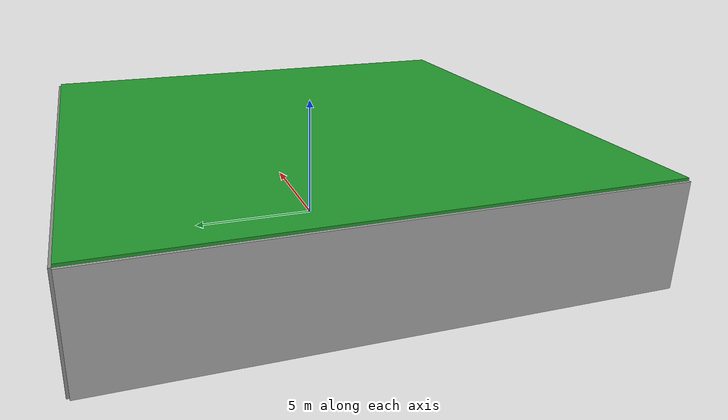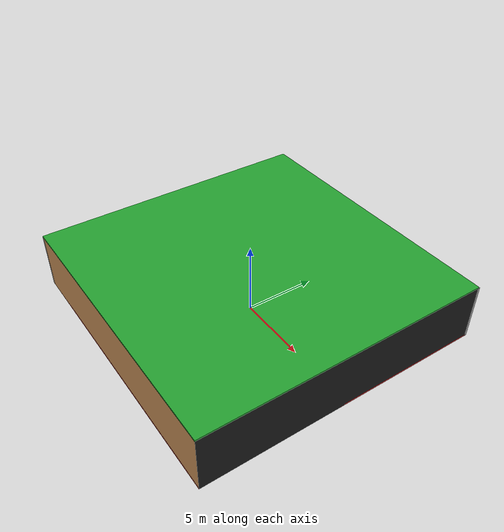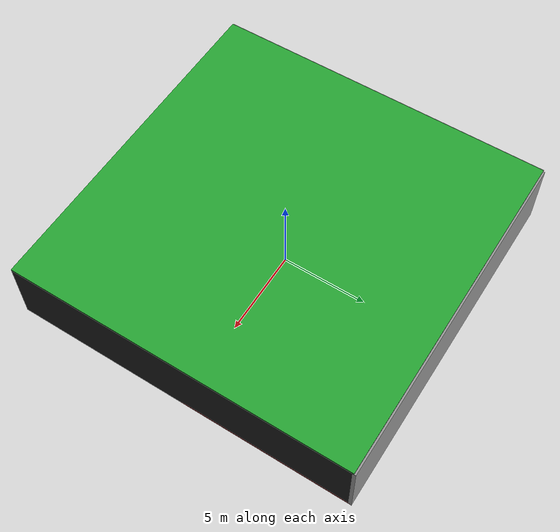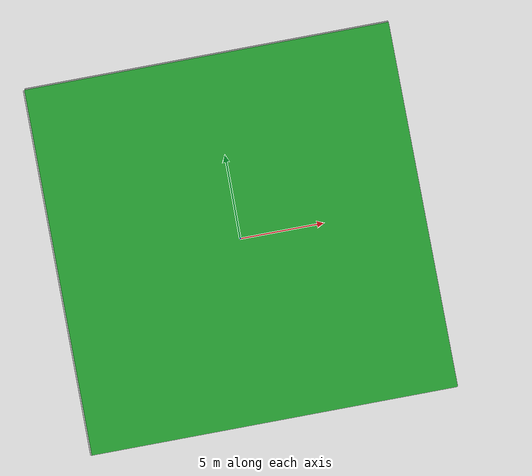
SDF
<sdf version="1.4">
 <world name="default">
  <physics type="ode">
   <max_step_size>0.001</max_step_size>
   <real_time_factor>1</real_time_factor>
   <real_time_update_rate>1000</real_time_update_rate>
   <gravity>0 0 -9.8</gravity>
  </physics>
  <scene><ambient>0.4 0.4 0.4 1</ambient><background>0.7 0.7 0.7 1</background><shadows>1</shadows></scene>
  <model name="Surrounding">
   <static>1</static>
   <link name="Ceiling">
    <collision name="Ceiling_Collision"><geometry><box><size>20 20 0.1</size></box></geometry></collision>
    <visual name="Ceiling_Visual">
     <geometry><box><size>20 20 0.1</size></box></geometry>
     <material>
      <script><uri>file://media/materials/scripts/gazebo.material</uri><name>Gazebo/GreenGlow</name></script>
     </material>
    </visual>
    <pose>0 0 4.05 0 0 0</pose>
   </link>
   <link name="Wall_South">
    <collision name="Wall_South_Collision">
     <geometry><box><size>20 0 4</size></box></geometry>
     <pose>0 0 2 0 -0 0</pose>
    </collision>
    <visual name="Wall_South_Visual">
     <pose>0 0 2 0 -0 0</pose>
     <geometry><box><size>20 0 4</size></box></geometry>
     <material>
      <script><uri>file://media/materials/scripts/gazebo.material</uri><name>Gazebo/WoodFloor</name></script>
     </material>
    </visual>
    <velocity_decay><linear>0</linear><angular>0</angular></velocity_decay>
    <pose>0 -10 0 0 -0 0</pose>
   </link>
   <link name="Wall_East">
    <collision name="Wall_21_Collision">
     <geometry><box><size>20 0 4</size></box></geometry>
     <pose>0 0 2 0 -0 0</pose>
    </collision>
    <visual name="Wall_21_Visual">
     <pose>0 0 2 0 -0 0</pose>
     <geometry><box><size>20 0 4</size></box></geometry>
     <material>
      <script><uri>file://media/materials/scripts/gazebo.material</uri><name>Gazebo/FlatBlack</name></script>
     </material>
    </visual>
    <velocity_decay><linear>0</linear><angular>0</angular></velocity_decay>
    <pose>10 0 0 0 -0 1.5708</pose>
   </link>
   <link name="Wall_North">
    <collision name="Wall_22_Collision">
     <geometry><box><size>20 0.2 4</size></box></geometry>
     <pose>0 0 2 0 -0 0</pose>
    </collision>
    <visual name="Wall_22_Visual">
     <pose>0 0 2 0 -0 0</pose>
     <geometry><box><size>20 0.2 4</size></box></geometry>
     <material>
      <script><uri>file://media/materials/scripts/gazebo.material</uri><name>Gazebo/GreyGradientSky</name></script>
     </material>
    </visual>
    <velocity_decay><linear>0</linear><angular>0</angular></velocity_decay>
    <pose>0 10 0 0 -0 0</pose>
   </link>
   <link name="Wall_West">
    <collision name="Wall_23_Collision">
     <geometry><box><size>20 0.2 4</size></box></geometry>
     <pose>0 0 2 0 -0 0</pose>
    </collision>
    <visual name="Wall_23_Visual">
     <pose>0 0 2 0 -0 0</pose>
     <geometry><box><size>20 0.2 4</size></box></geometry>
     <material>
      <script><uri>file://media/materials/scripts/gazebo.material</uri><name>Gazebo/CloudySky</name></script>
     </material>
    </visual>
    <velocity_decay><linear>0</linear><angular>0</angular></velocity_decay>
    <pose>-10 0 0 0 0 -1.5708</pose>
   </link>
   <link name="Ground_link">
    <collision name="collision">
     <pose>0 0 .05 0 -0 0</pose>
     <geometry><box><size>20 20 0.1</size></box></geometry>
    </collision>
    <visual name="visual">
     <pose>0 0 .05 0 -0 0</pose>
     <geometry><box><size>20 20 0.1</size></box></geometry>
     <material>
      <script><uri>file://media/materials/scripts/gazebo.material</uri><name>Gazebo/RedGlow</name></script>
     </material>
    </visual>
   </link>
   <static>1</static>
  </model>
  <spherical_coordinates>
   <surface_model>EARTH_WGS84</surface_model>
   <latitude_deg>0</latitude_deg>
   <longitude_deg>0</longitude_deg>
   <elevation>0</elevation>
   <heading_deg>0</heading_deg>
  </spherical_coordinates>
  <light name="lightball_0" type="diffuse">
   <diffuse>0.8 0.8 0.8 1</diffuse>
   <specular>0.2 0.2 0.2 1</specular>
   <attenuation>
    <range>100</range>
    <constant>0.7</constant>
    <linear>0.01</linear>
    <quadratic>0.001</quadratic>
   </attenuation>
   <direction>-0.5 0.1 -0.9</direction>
   <pose>4.77469614217 1.91493856575 0.600866035542 0 0 0</pose>
  </light>
  <light name="lightball_1" type="diffuse">
   <diffuse>0.8 0.8 0.8 1</diffuse>
   <specular>0.2 0.2 0.2 1</specular>
   <attenuation>
    <range>100</range>
    <constant>0.7</constant>
    <linear>0.01</linear>
    <quadratic>0.001</quadratic>
   </attenuation>
   <direction>-0.5 0.1 -0.9</direction>
   <pose>0.883845284032 7.42913267691 2.34874654629 0 0 0</pose>
  </light>
  <light name="lightball_2" type="diffuse">
   <diffuse>0.8 0.8 0.8 1</diffuse>
   <specular>0.2 0.2 0.2 1</specular>
   <attenuation>
    <range>100</range>
    <constant>0.7</constant>
    <linear>0.01</linear>
    <quadratic>0.001</quadratic>
   </attenuation>
   <direction>-0.5 0.1 -0.9</direction>
   <pose>5.97025103469 2.39383676762 3.89608031224 0 0 0</pose>
  </light>
  <light name="lightball_3" type="diffuse">
   <diffuse>0.8 0.8 0.8 1</diffuse>
   <specular>0.2 0.2 0.2 1</specular>
   <attenuation>
    <range>100</range>
    <constant>0.7</constant>
    <linear>0.01</linear>
    <quadratic>0.001</quadratic>
   </attenuation>
   <direction>-0.5 0.1 -0.9</direction>
   <pose>3.40223818331 -4.8828599375 2.2900171576 0 0 0</pose>
  </light>
  <light name="lightball_4" type="diffuse">
   <diffuse>0.8 0.8 0.8 1</diffuse>
   <specular>0.2 0.2 0.2 1</specular>
   <attenuation>
    <range>100</range>
    <constant>0.7</constant>
    <linear>0.01</linear>
    <quadratic>0.001</quadratic>
   </attenuation>
   <direction>-0.5 0.1 -0.9</direction>
   <pose>8.8999542423 1.35846984095 1.4997331906 0 0 0</pose>
  </light>
  <light name="lightball_5" type="diffuse">
   <diffuse>0.8 0.8 0.8 1</diffuse>
   <specular>0.2 0.2 0.2 1</specular>
   <attenuation>
    <range>100</range>
    <constant>0.7</constant>
    <linear>0.01</linear>
    <quadratic>0.001</quadratic>
   </attenuation>
   <direction>-0.5 0.1 -0.9</direction>
   <pose>8.67666415807 -9.48278158495 2.25438245227 0 0 0</pose>
  </light>
  <light name="lightball_6" type="diffuse">
   <diffuse>0.8 0.8 0.8 1</diffuse>
   <specular>0.2 0.2 0.2 1</specular>
   <attenuation>
    <range>100</range>
    <constant>0.7</constant>
    <linear>0.01</linear>
    <quadratic>0.001</quadratic>
   </attenuation>
   <direction>-0.5 0.1 -0.9</direction>
   <pose>-1.42552506261 -0.450122633347 2.08434816948 0 0 0</pose>
  </light>
  <light name="lightball_7" type="diffuse">
   <diffuse>0.8 0.8 0.8 1</diffuse>
   <specular>0.2 0.2 0.2 1</specular>
   <attenuation>
    <range>100</range>
    <constant>0.7</constant>
    <linear>0.01</linear>
    <quadratic>0.001</quadratic>
   </attenuation>
   <direction>-0.5 0.1 -0.9</direction>
   <pose>-1.46064375574 6.96069015958 2.69618675547 0 0 0</pose>
  </light>
  <light name="lightball_8" type="diffuse">
   <diffuse>0.8 0.8 0.8 1</diffuse>
   <specular>0.2 0.2 0.2 1</specular>
   <attenuation>
    <range>100</range>
    <constant>0.7</constant>
    <linear>0.01</linear>
    <quadratic>0.001</quadratic>
   </attenuation>
   <direction>-0.5 0.1 -0.9</direction>
   <pose>-4.28059217409 4.2819172458 2.30148198502 0 0 0</pose>
  </light>
  <include>
   <uri>model://robocup_3Dsim_goal</uri>
   <pose>-7.63242939516 -7.46492899299 0 0 0 0.656497527888</pose>
  </include>
  <include><uri>model://cabinet</uri><pose>-3.99368277081 -0.822377491571 0 0 0 0.848464518608</pose></include>
  <include><uri>model://cabinet</uri><pose>1.14214042638 1.01151368682 0 0 0 1.31123496797</pose></include>
 </world>
</sdf>

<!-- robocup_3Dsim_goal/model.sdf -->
<sdf version="1.5">
  <model name="robocup_3d_goal">
    <static>true</static>
    <link name="left_post">
      <pose>0 1.05 0.45 0 0 0</pose>
      <collision name="collision">
        <geometry>
          <cylinder>
            <radius>0.05</radius>
            <length>0.9</length>
          </cylinder>
        </geometry>
      </collision>
      <visual name="visual">
        <geometry>
          <cylinder>
            <radius>0.05</radius>
            <length>0.9</length>
          </cylinder>
        </geometry>
        <material>
          <script>
            <uri>file://media/materials/scripts/gazebo.material</uri>
            <name>Gazebo/ZincYellow</name>
          </script>
        </material>
      </visual>
    </link>
    <link name="left_support_horiz_lower">
      <pose>0.30 1.05 0.01 0 0 0</pose>
      <collision name="collision">
        <geometry>
          <box>
            <size>0.50 0.02 0.02</size>
          </box>
        </geometry>
      </collision>
      <visual name="visual">
        <geometry>
          <box>
            <size>0.50 0.02 0.02</size>
          </box>
        </geometry>
        <material>
          <script>
            <uri>file://media/materials/scripts/gazebo.material</uri>
            <name>Gazebo/White</name>
          </script>
        </material>
      </visual>
    </link>
    <link name="left_support_horiz_upper">
      <pose>0.30 1.05 0.79 0 0 0</pose>
      <collision name="collision">
        <geometry>
          <box>
            <size>0.50 0.02 0.02</size>
          </box>
        </geometry>
      </collision>
      <visual name="visual">
        <geometry>
          <box>
            <size>0.50 0.02 0.02</size>
          </box>
        </geometry>
        <material>
          <script>
            <uri>file://media/materials/scripts/gazebo.material</uri>
            <name>Gazebo/White</name>
          </script>
        </material>
      </visual>
    </link>
    <link name="left_support_vertical">
      <pose>0.56 1.05 0.4 0 1.5708 0</pose>
      <collision name="collision">
        <geometry>
          <box>
            <size>0.80 0.02 0.02</size>
          </box>
        </geometry>
      </collision>
      <visual name="visual">
        <geometry>
          <box>
            <size>0.80 0.02 0.02</size>
          </box>
        </geometry>
        <material>
          <script>
            <uri>file://media/materials/scripts/gazebo.material</uri>
            <name>Gazebo/White</name>
          </script>
        </material>
      </visual>
    </link>
    <link name="right_support_horiz_lower">
      <pose>0.30 -1.05 0.01 0 0 0</pose>
      <collision name="collision">
        <geometry>
          <box>
            <size>0.50 0.02 0.02</size>
          </box>
        </geometry>
      </collision>
      <visual name="visual">
        <geometry>
          <box>
            <size>0.50 0.02 0.02</size>
          </box>
        </geometry>
        <material>
          <script>
            <uri>file://media/materials/scripts/gazebo.material</uri>
            <name>Gazebo/White</name>
          </script>
        </material>
      </visual>
    </link>
    <link name="right_support_horiz_upper">
      <pose>0.30 -1.05 0.79 0 0 0</pose>
      <collision name="collision">
        <geometry>
          <box>
            <size>0.50 0.02 0.02</size>
          </box>
        </geometry>
      </collision>
      <visual name="visual">
        <geometry>
          <box>
            <size>0.50 0.02 0.02</size>
          </box>
        </geometry>
        <material>
          <script>
            <uri>file://media/materials/scripts/gazebo.material</uri>
            <name>Gazebo/White</name>
          </script>
        </material>
      </visual>
    </link>
    <link name="right_support_vertical">
      <pose>0.56 -1.05 0.4 0 1.5708 0</pose>
      <collision name="collision">
        <geometry>
          <box>
            <size>0.80 0.02 0.02</size>
          </box>
        </geometry>
      </collision>
      <visual name="visual">
        <geometry>
          <box>
            <size>0.80 0.02 0.02</size>
          </box>
        </geometry>
        <material>
          <script>
            <uri>file://media/materials/scripts/gazebo.material</uri>
            <name>Gazebo/White</name>
          </script>
        </material>
      </visual>
    </link>
    <link name="center_support_horiz_lower">
      <pose>0.56 0 0.01 0 1.5708 0</pose>
      <collision name="collision">
        <geometry>
          <box>
            <size>0.02 2.08 0.02</size>
          </box>
        </geometry>
      </collision>
      <visual name="visual">
        <geometry>
          <box>
            <size>0.02 2.08 0.02</size>
          </box>
        </geometry>
        <material>
          <script>
            <uri>file://media/materials/scripts/gazebo.material</uri>
            <name>Gazebo/White</name>
          </script>
        </material>
      </visual>
    </link>
    <link name="center_support_horiz_upper">
      <pose>0.56 0 0.79 0 1.5708 0</pose>
      <collision name="collision">
        <geometry>
          <box>
            <size>0.02 2.08 0.02</size>
          </box>
        </geometry>
      </collision>
      <visual name="visual">
        <geometry>
          <box>
            <size>0.02 2.08 0.02</size>
          </box>
        </geometry>
        <material>
          <script>
            <uri>file://media/materials/scripts/gazebo.material</uri>
            <name>Gazebo/White</name>
          </script>
        </material>
      </visual>
    </link>
    <link name="right_post">
      <pose>0 -1.05 0.45 0 0 0</pose>
      <collision name="collision">
        <geometry>
          <cylinder>
            <radius>0.05</radius>
            <length>0.9</length>
          </cylinder>
        </geometry>
      </collision>
      <visual name="visual">
        <geometry>
          <cylinder>
            <radius>0.05</radius>
            <length>0.9</length>
          </cylinder>
        </geometry>
        <material>
          <script>
            <uri>file://media/materials/scripts/gazebo.material</uri>
            <name>Gazebo/ZincYellow</name>
          </script>
        </material>
      </visual>
    </link>
    <link name="crossbar">
      <pose>0 0 0.85 1.57 1.57 0</pose>
      <collision name="collision">
        <geometry>
          <cylinder>
            <radius>0.05</radius>
            <length>2.0</length>
          </cylinder>
        </geometry>
      </collision>
      <visual name="visual">
        <geometry>
          <cylinder>
            <radius>0.05</radius>
            <length>2.0</length>
          </cylinder>
        </geometry>
        <material>
          <script>
            <uri>file://media/materials/scripts/gazebo.material</uri>
            <name>Gazebo/ZincYellow</name>
          </script>
        </material>
      </visual>
    </link>
    <link name="center_net">
      <pose>0.56 0 0.40 0 0 0</pose>
      <collision name="collision">
        <geometry>
          <box>
            <size>0.01 2.1 0.80</size>
          </box>
        </geometry>
      </collision>
      <visual name="visual">
        <geometry>
          <box>
            <size>0.01 2.1 0.80</size>
          </box>
        </geometry>
        <material>
          <script>
            <uri>model://../model_source/models/robocup09_spl_field/materials/scripts/</uri>
            <uri>model://../model_source/models/robocup09_spl_field/materials/textures/</uri>
            <name>RoboCup/Net</name>
          </script>
        </material>
      </visual>
    </link>
    <link name="left_net">
      <pose>0.30 1.05 0.40 0 0 0</pose>
      <collision name="collision">
        <geometry>
          <box>
            <size>0.50 0.01 0.76</size>
          </box>
        </geometry>
      </collision>
      <visual name="visual">
        <geometry>
          <box>
            <size>0.50 0.01 0.76</size>
          </box>
        </geometry>
        <material>
          <script>
            <uri>model://../model_source/models/robocup09_spl_field/materials/scripts/</uri>
            <uri>model://../model_source/models/robocup09_spl_field/materials/textures/</uri>
            <name>RoboCup/Net</name>
          </script>
        </material>
      </visual>
    </link>
    <link name="right_net">
      <pose>0.30 -1.05 0.40 0 0 0</pose>
      <collision name="collision">
        <geometry>
          <box>
            <size>0.50 0.01 0.76</size>
          </box>
        </geometry>
      </collision>
      <visual name="visual">
        <geometry>
          <box>
            <size>0.50 0.01 0.76</size>
          </box>
        </geometry>
        <material>
          <script>
            <uri>model://../model_source/models/robocup09_spl_field/materials/scripts/</uri>
            <uri>model://../model_source/models/robocup09_spl_field/materials/textures/</uri>
            <name>RoboCup/Net</name>
          </script>
        </material>
      </visual>
    </link>
  </model>
</sdf>

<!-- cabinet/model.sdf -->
<sdf version="1.5">
  <model name="cabinet">
    <static>true</static>
    <link name="cabinet_bottom_plate">
      <inertial>
        <pose>0 0 -1 0 0 0</pose>
        <inertia>
          <ixx>2.050000</ixx>
          <ixy>0</ixy>
          <ixz>0</ixz>
          <iyy>2.050000</iyy>
          <iyz>0</iyz>
          <izz>2.050000</izz>
        </inertia>
        <mass>25.000000</mass>
      </inertial>
      <collision name="cabinet_bottom_plate_geom">
        <pose>0 0 0.010000 0 0 0</pose>
        <geometry>
          <box>
            <size>0.450000 0.450000 0.020000</size>
          </box>
        </geometry>
      </collision>
      <visual name="cabinet_bottom_plate_geom_visual">
        <pose>0 0 0.010000 0 0 0</pose>
        <geometry>
          <box>
            <size>0.450000 0.450000 0.020000</size>
          </box>
        </geometry>
        <material>
          <script>
            <uri>model://media/materials/scripts/gazebo.material</uri>
            <name>Gazebo/Wood</name>
          </script>
        </material>
      </visual>
      <collision name="cabinet_bottom_plate_geom_cabinet_back_plate">
        <pose>0.235000 0 0.510000 0 0 0</pose>
        <geometry>
          <box>
            <size>0.020000 0.450000 1.020000</size>
          </box>
        </geometry>
      </collision>
      <visual name="cabinet_bottom_plate_geom_cabinet_back_plate_visual">
        <pose>0.235000 0 0.510000 0 0 0</pose>
        <geometry>
          <box>
            <size>0.020000 0.450000 1.020000</size>
          </box>
        </geometry>
        <material>
          <script>
            <uri>model://media/materials/scripts/gazebo.material</uri>
            <name>Gazebo/Wood</name>
          </script>
        </material>
      </visual>
      <collision name="cabinet_bottom_plate_geom_cabinet_left_plate">
        <pose>0 0.235000 0.510000 0 0 0</pose>
        <geometry>
          <box>
            <size>0.450000 0.020000 1.020000</size>
          </box>
        </geometry>
      </collision>
      <visual name="cabinet_bottom_plate_geom_cabinet_left_plate_visual">
        <pose>0 0.235000 0.510000 0 0 0</pose>
        <geometry>
          <box>
            <size>0.450000 0.020000 1.020000</size>
          </box>
        </geometry>
        <material>
          <script>
            <uri>model://media/materials/scripts/gazebo.material</uri>
            <name>Gazebo/Wood</name>
          </script>
        </material>
      </visual>
      <collision name="cabinet_bottom_plate_geom_cabinet_middle_plate">
        <pose>0 0 0.510000 0 0 0</pose>
        <geometry>
          <box>
            <size>0.450000 0.450000 0.020000</size>
          </box>
        </geometry>
      </collision>
      <visual name="cabinet_bottom_plate_geom_cabinet_middle_plate_visual">
        <pose>0 0 0.510000 0 0 0</pose>
        <geometry>
          <box>
            <size>0.450000 0.450000 0.020000</size>
          </box>
        </geometry>
        <material>
          <script>
            <uri>model://media/materials/scripts/gazebo.material</uri>
            <name>Gazebo/Wood</name>
          </script>
        </material>
      </visual>
      <collision name="cabinet_bottom_plate_geom_cabinet_right_plate">
        <pose>0 -0.235000 0.510000 0 0 0</pose>
        <geometry>
          <box>
            <size>0.450000 0.020000 1.020000</size>
          </box>
        </geometry>
      </collision>
      <visual name="cabinet_bottom_plate_geom_cabinet_right_plate_visual">
        <pose>0 -0.235000 0.510000 0 0 0</pose>
        <geometry>
          <box>
            <size>0.450000 0.020000 1.020000</size>
          </box>
        </geometry>
        <material>
          <script>
            <uri>model://media/materials/scripts/gazebo.material</uri>
            <name>Gazebo/Wood</name>
          </script>
        </material>
      </visual>
      <collision name="cabinet_bottom_plate_geom_cabinet_top_plate">
        <pose>0 0 1.010000 0 0 0</pose>
        <geometry>
          <box>
            <size>0.450000 0.450000 0.020000</size>
          </box>
        </geometry>
      </collision>
      <visual name="cabinet_bottom_plate_geom_cabinet_top_plate_visual">
        <pose>0 0 1.010000 0 0 0</pose>
        <geometry>
          <box>
            <size>0.450000 0.450000 0.020000</size>
          </box>
        </geometry>
        <material>
          <script>
            <uri>model://media/materials/scripts/gazebo.material</uri>
            <name>Gazebo/Wood</name>
          </script>
        </material>
      </visual>
    </link>
  </model>
</sdf>
